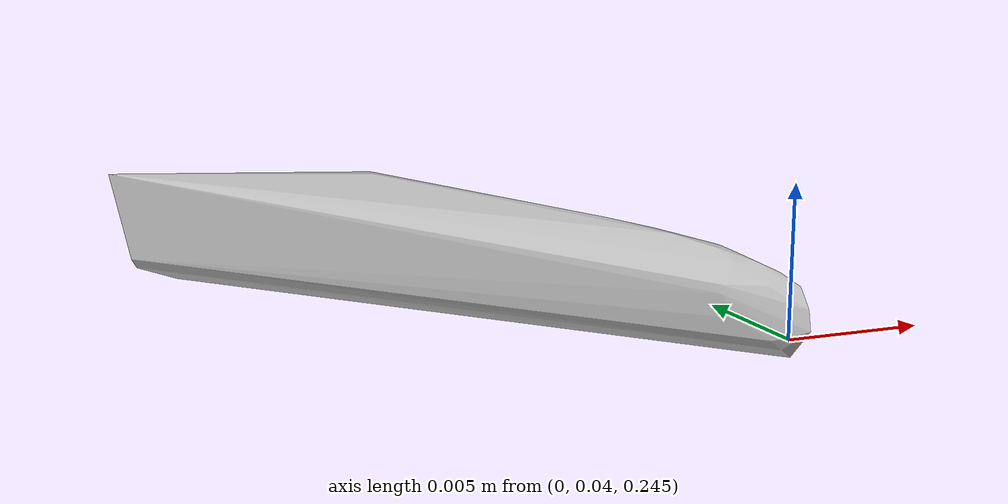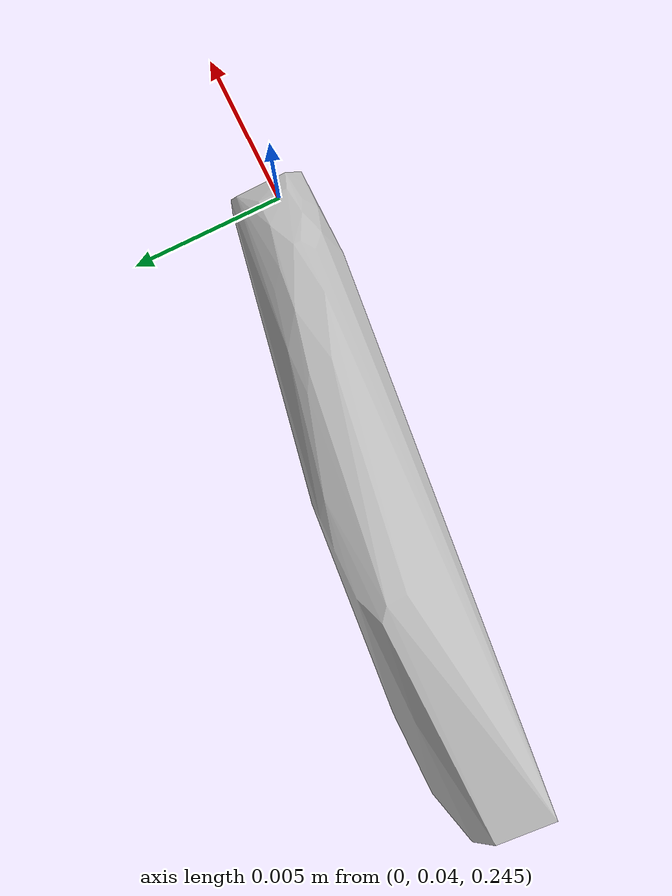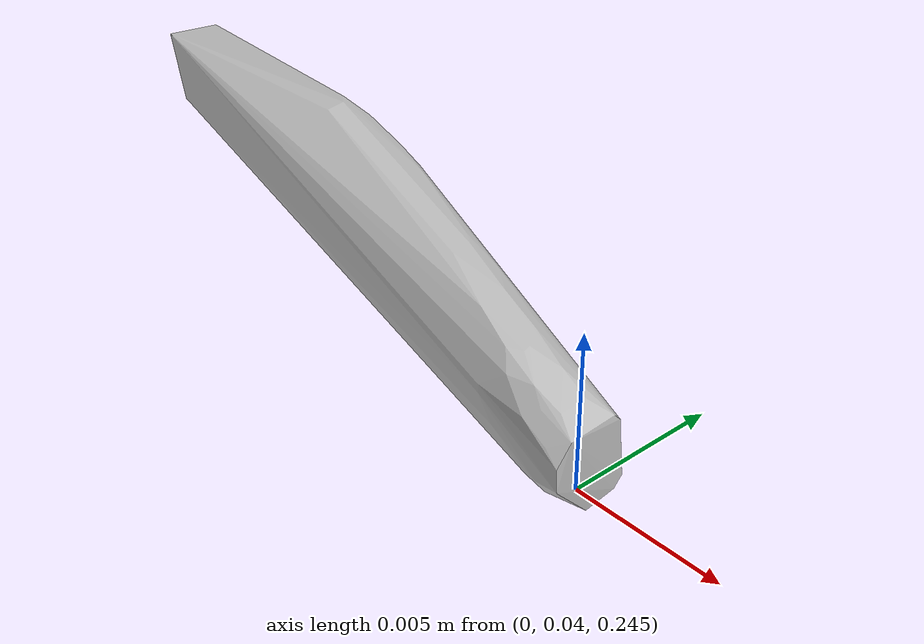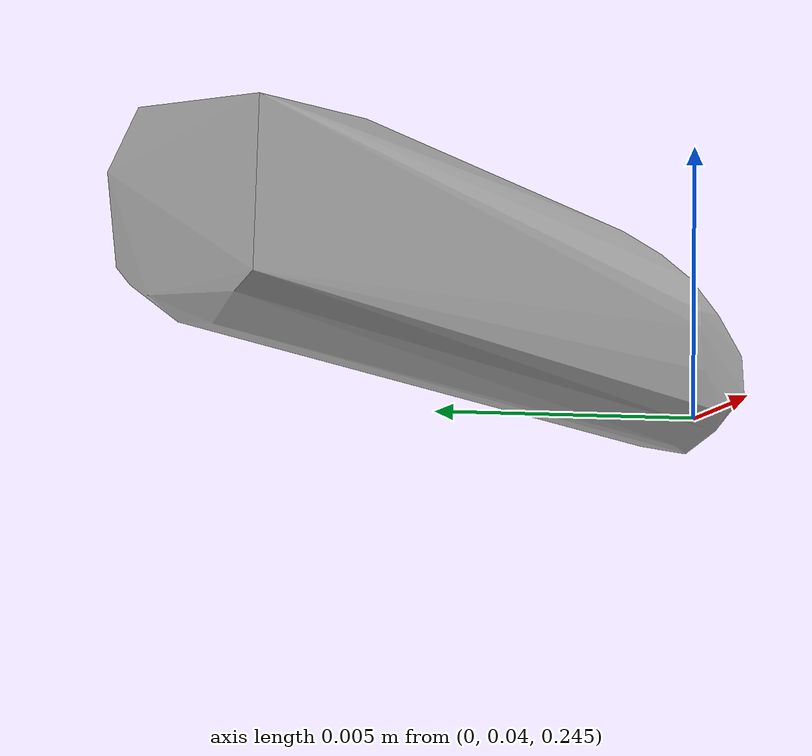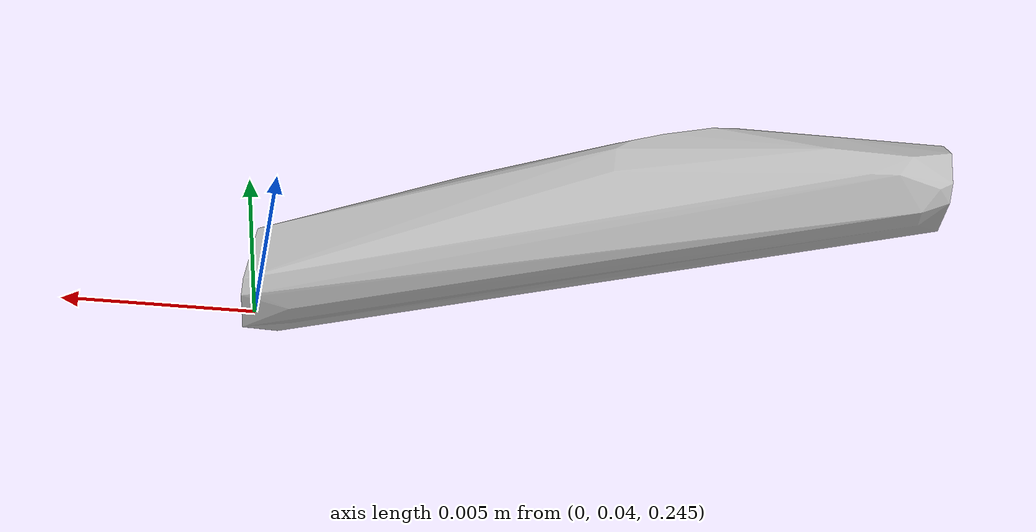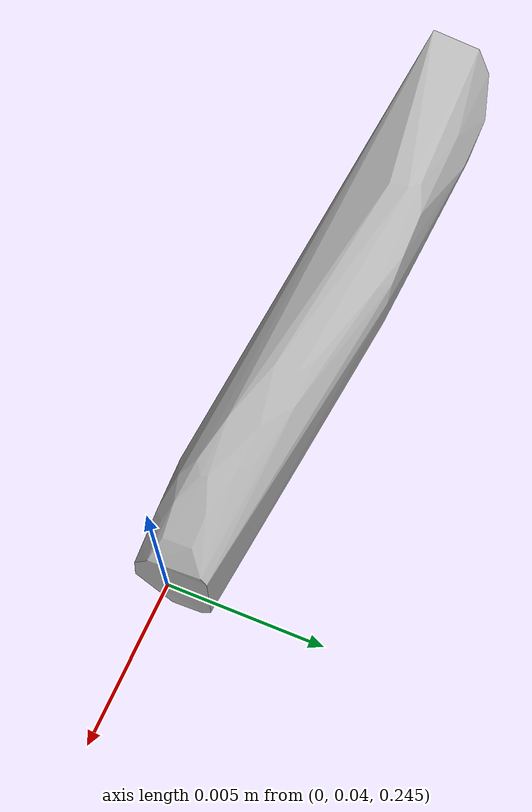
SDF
<?xml version="1.0"?>
<sdf version="1.7">
  <model name="vascular_partexport061">
    <link name="vascular_partexport061_body">
      <visual name="vascular_partexport061_visual">
        <geometry>
          <mesh>
            <uri>vascular_partexport061.obj</uri>
          </mesh>
        </geometry>
      </visual>
      <collision name="vascular_partexport061_collision">
        <geometry>
          <mesh>
            <uri>vascular_partexport061.obj</uri>
          </mesh>
        </geometry>
      </collision>
    </link>
    <frame name="vascular_partexport061_center">
      <pose relative_to="vascular_partexport061_body">0 0 0 0 0 0</pose>
    </frame>
  </model>
</sdf>
